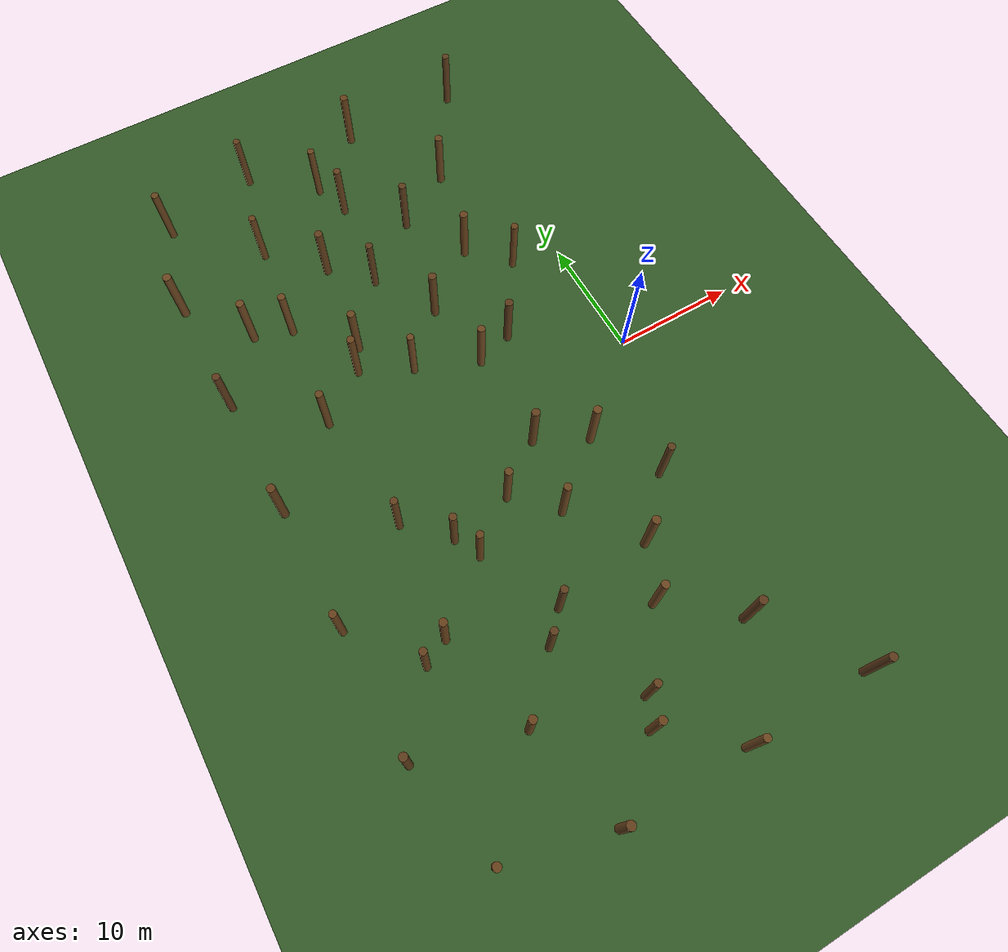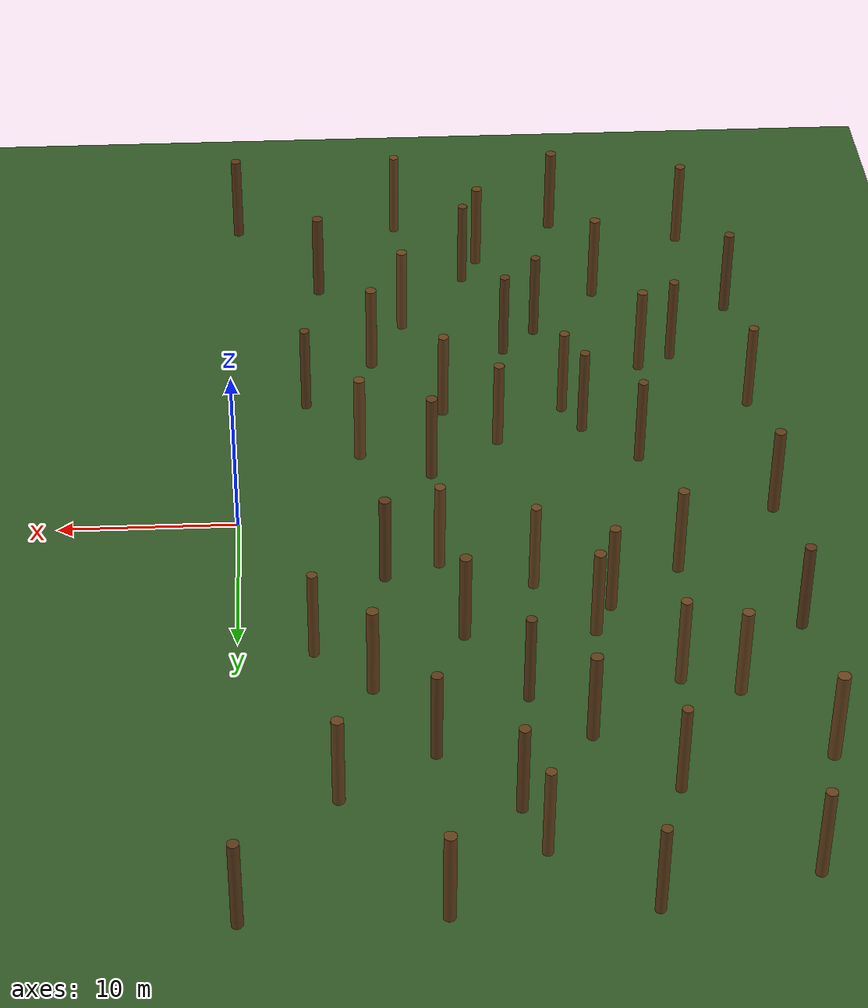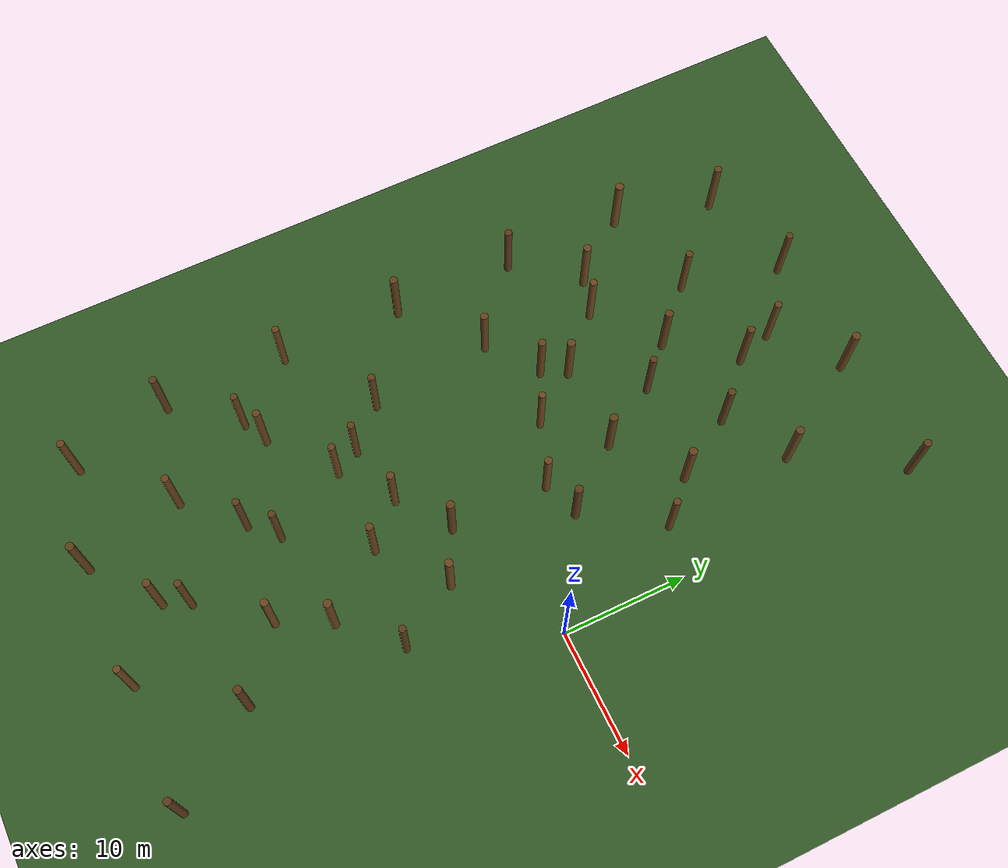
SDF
<sdf version="1.8">
 <world name="forest_world">
  <model name="ground_plane">
   <static>true</static>
   <link name="link">
    <collision name="collision">
     <geometry><plane><normal>0 0 1</normal><size>100 100</size></plane></geometry>
    </collision>
    <visual name="visual">
     <geometry><plane><normal>0 0 1</normal><size>100 100</size></plane></geometry>
     <material><ambient>0.2 0.35 0.15 1</ambient><diffuse>0.2 0.35 0.15 1</diffuse></material>
    </visual>
   </link>
  </model>
  <model name="t000">
   <static>true</static>
   <pose>-28 -28 2.7 0 0 0</pose>
   <link name="l">
    <collision name="c">
     <geometry><cylinder><radius>0.30</radius><length>5.4</length></cylinder></geometry>
    </collision>
    <visual name="v">
     <geometry><cylinder><radius>0.30</radius><length>5.4</length></cylinder></geometry>
     <material><ambient>0.40 0.25 0.10 1</ambient><diffuse>0.40 0.25 0.10 1</diffuse></material>
    </visual>
   </link>
  </model>
  <model name="t001">
   <static>true</static>
   <pose>-20 -30 2.7 0 0 0</pose>
   <link name="l">
    <collision name="c">
     <geometry><cylinder><radius>0.32</radius><length>5.4</length></cylinder></geometry>
    </collision>
    <visual name="v">
     <geometry><cylinder><radius>0.32</radius><length>5.4</length></cylinder></geometry>
     <material><ambient>0.38 0.24 0.10 1</ambient><diffuse>0.38 0.24 0.10 1</diffuse></material>
    </visual>
   </link>
  </model>
  <model name="t002">
   <static>true</static>
   <pose>-10 -30 2.7 0 0 0</pose>
   <link name="l">
    <collision name="c">
     <geometry><cylinder><radius>0.28</radius><length>5.4</length></cylinder></geometry>
    </collision>
    <visual name="v">
     <geometry><cylinder><radius>0.28</radius><length>5.4</length></cylinder></geometry>
     <material><ambient>0.42 0.27 0.12 1</ambient><diffuse>0.42 0.27 0.12 1</diffuse></material>
    </visual>
   </link>
  </model>
  <model name="t003">
   <static>true</static>
   <pose>0 -30 2.7 0 0 0</pose>
   <link name="l">
    <collision name="c">
     <geometry><cylinder><radius>0.30</radius><length>5.4</length></cylinder></geometry>
    </collision>
    <visual name="v">
     <geometry><cylinder><radius>0.30</radius><length>5.4</length></cylinder></geometry>
     <material><ambient>0.36 0.22 0.10 1</ambient><diffuse>0.36 0.22 0.10 1</diffuse></material>
    </visual>
   </link>
  </model>
  <model name="t015">
   <static>true</static>
   <pose>0 30 2.7 0 0 0</pose>
   <link name="l">
    <collision name="c">
     <geometry><cylinder><radius>0.30</radius><length>5.4</length></cylinder></geometry>
    </collision>
    <visual name="v">
     <geometry><cylinder><radius>0.30</radius><length>5.4</length></cylinder></geometry>
     <material><ambient>0.36 0.23 0.10 1</ambient><diffuse>0.36 0.23 0.10 1</diffuse></material>
    </visual>
   </link>
  </model>
  <model name="t016">
   <static>true</static>
   <pose>-10 30 2.7 0 0 0</pose>
   <link name="l">
    <collision name="c">
     <geometry><cylinder><radius>0.32</radius><length>5.4</length></cylinder></geometry>
    </collision>
    <visual name="v">
     <geometry><cylinder><radius>0.32</radius><length>5.4</length></cylinder></geometry>
     <material><ambient>0.40 0.25 0.10 1</ambient><diffuse>0.40 0.25 0.10 1</diffuse></material>
    </visual>
   </link>
  </model>
  <model name="t017">
   <static>true</static>
   <pose>-20 30 2.7 0 0 0</pose>
   <link name="l">
    <collision name="c">
     <geometry><cylinder><radius>0.28</radius><length>5.4</length></cylinder></geometry>
    </collision>
    <visual name="v">
     <geometry><cylinder><radius>0.28</radius><length>5.4</length></cylinder></geometry>
     <material><ambient>0.38 0.24 0.10 1</ambient><diffuse>0.38 0.24 0.10 1</diffuse></material>
    </visual>
   </link>
  </model>
  <model name="t018">
   <static>true</static>
   <pose>-28 28 2.7 0 0 0</pose>
   <link name="l">
    <collision name="c">
     <geometry><cylinder><radius>0.30</radius><length>5.4</length></cylinder></geometry>
    </collision>
    <visual name="v">
     <geometry><cylinder><radius>0.30</radius><length>5.4</length></cylinder></geometry>
     <material><ambient>0.40 0.26 0.11 1</ambient><diffuse>0.40 0.26 0.11 1</diffuse></material>
    </visual>
   </link>
  </model>
  <model name="t019">
   <static>true</static>
   <pose>-30 20 2.7 0 0 0</pose>
   <link name="l">
    <collision name="c">
     <geometry><cylinder><radius>0.34</radius><length>5.4</length></cylinder></geometry>
    </collision>
    <visual name="v">
     <geometry><cylinder><radius>0.34</radius><length>5.4</length></cylinder></geometry>
     <material><ambient>0.42 0.27 0.12 1</ambient><diffuse>0.42 0.27 0.12 1</diffuse></material>
    </visual>
   </link>
  </model>
  <model name="t020">
   <static>true</static>
   <pose>-30 10 2.7 0 0 0</pose>
   <link name="l">
    <collision name="c">
     <geometry><cylinder><radius>0.30</radius><length>5.4</length></cylinder></geometry>
    </collision>
    <visual name="v">
     <geometry><cylinder><radius>0.30</radius><length>5.4</length></cylinder></geometry>
     <material><ambient>0.36 0.22 0.10 1</ambient><diffuse>0.36 0.22 0.10 1</diffuse></material>
    </visual>
   </link>
  </model>
  <model name="t021">
   <static>true</static>
   <pose>-30 0 2.7 0 0 0</pose>
   <link name="l">
    <collision name="c">
     <geometry><cylinder><radius>0.32</radius><length>5.4</length></cylinder></geometry>
    </collision>
    <visual name="v">
     <geometry><cylinder><radius>0.32</radius><length>5.4</length></cylinder></geometry>
     <material><ambient>0.38 0.24 0.10 1</ambient><diffuse>0.38 0.24 0.10 1</diffuse></material>
    </visual>
   </link>
  </model>
  <model name="t022">
   <static>true</static>
   <pose>-30 -10 2.7 0 0 0</pose>
   <link name="l">
    <collision name="c">
     <geometry><cylinder><radius>0.28</radius><length>5.4</length></cylinder></geometry>
    </collision>
    <visual name="v">
     <geometry><cylinder><radius>0.28</radius><length>5.4</length></cylinder></geometry>
     <material><ambient>0.40 0.25 0.10 1</ambient><diffuse>0.40 0.25 0.10 1</diffuse></material>
    </visual>
   </link>
  </model>
  <model name="t023">
   <static>true</static>
   <pose>-30 -20 2.7 0 0 0</pose>
   <link name="l">
    <collision name="c">
     <geometry><cylinder><radius>0.30</radius><length>5.4</length></cylinder></geometry>
    </collision>
    <visual name="v">
     <geometry><cylinder><radius>0.30</radius><length>5.4</length></cylinder></geometry>
     <material><ambient>0.36 0.23 0.10 1</ambient><diffuse>0.36 0.23 0.10 1</diffuse></material>
    </visual>
   </link>
  </model>
  <model name="t024">
   <static>true</static>
   <pose>-22 -22 2.7 0 0 0</pose>
   <link name="l">
    <collision name="c">
     <geometry><cylinder><radius>0.30</radius><length>5.4</length></cylinder></geometry>
    </collision>
    <visual name="v">
     <geometry><cylinder><radius>0.30</radius><length>5.4</length></cylinder></geometry>
     <material><ambient>0.40 0.25 0.10 1</ambient><diffuse>0.40 0.25 0.10 1</diffuse></material>
    </visual>
   </link>
  </model>
  <model name="t025">
   <static>true</static>
   <pose>-14 -24 2.7 0 0 0</pose>
   <link name="l">
    <collision name="c">
     <geometry><cylinder><radius>0.28</radius><length>5.4</length></cylinder></geometry>
    </collision>
    <visual name="v">
     <geometry><cylinder><radius>0.28</radius><length>5.4</length></cylinder></geometry>
     <material><ambient>0.38 0.24 0.10 1</ambient><diffuse>0.38 0.24 0.10 1</diffuse></material>
    </visual>
   </link>
  </model>
  <model name="t026">
   <static>true</static>
   <pose>-5 -23 2.7 0 0 0</pose>
   <link name="l">
    <collision name="c">
     <geometry><cylinder><radius>0.32</radius><length>5.4</length></cylinder></geometry>
    </collision>
    <visual name="v">
     <geometry><cylinder><radius>0.32</radius><length>5.4</length></cylinder></geometry>
     <material><ambient>0.36 0.22 0.10 1</ambient><diffuse>0.36 0.22 0.10 1</diffuse></material>
    </visual>
   </link>
  </model>
  <model name="t030">
   <static>true</static>
   <pose>-24 -14 2.7 0 0 0</pose>
   <link name="l">
    <collision name="c">
     <geometry><cylinder><radius>0.30</radius><length>5.4</length></cylinder></geometry>
    </collision>
    <visual name="v">
     <geometry><cylinder><radius>0.30</radius><length>5.4</length></cylinder></geometry>
     <material><ambient>0.40 0.25 0.10 1</ambient><diffuse>0.40 0.25 0.10 1</diffuse></material>
    </visual>
   </link>
  </model>
  <model name="t031">
   <static>true</static>
   <pose>-16 -16 2.7 0 0 0</pose>
   <link name="l">
    <collision name="c">
     <geometry><cylinder><radius>0.28</radius><length>5.4</length></cylinder></geometry>
    </collision>
    <visual name="v">
     <geometry><cylinder><radius>0.28</radius><length>5.4</length></cylinder></geometry>
     <material><ambient>0.36 0.23 0.10 1</ambient><diffuse>0.36 0.23 0.10 1</diffuse></material>
    </visual>
   </link>
  </model>
  <model name="t032">
   <static>true</static>
   <pose>-8 -15 2.7 0 0 0</pose>
   <link name="l">
    <collision name="c">
     <geometry><cylinder><radius>0.32</radius><length>5.4</length></cylinder></geometry>
    </collision>
    <visual name="v">
     <geometry><cylinder><radius>0.32</radius><length>5.4</length></cylinder></geometry>
     <material><ambient>0.40 0.26 0.11 1</ambient><diffuse>0.40 0.26 0.11 1</diffuse></material>
    </visual>
   </link>
  </model>
  <model name="t037">
   <static>true</static>
   <pose>-23 -5 2.7 0 0 0</pose>
   <link name="l">
    <collision name="c">
     <geometry><cylinder><radius>0.28</radius><length>5.4</length></cylinder></geometry>
    </collision>
    <visual name="v">
     <geometry><cylinder><radius>0.28</radius><length>5.4</length></cylinder></geometry>
     <material><ambient>0.38 0.24 0.10 1</ambient><diffuse>0.38 0.24 0.10 1</diffuse></material>
    </visual>
   </link>
  </model>
  <model name="t038">
   <static>true</static>
   <pose>-15 -7 2.7 0 0 0</pose>
   <link name="l">
    <collision name="c">
     <geometry><cylinder><radius>0.30</radius><length>5.4</length></cylinder></geometry>
    </collision>
    <visual name="v">
     <geometry><cylinder><radius>0.30</radius><length>5.4</length></cylinder></geometry>
     <material><ambient>0.40 0.26 0.11 1</ambient><diffuse>0.40 0.26 0.11 1</diffuse></material>
    </visual>
   </link>
  </model>
  <model name="t039">
   <static>true</static>
   <pose>-7 -6 2.7 0 0 0</pose>
   <link name="l">
    <collision name="c">
     <geometry><cylinder><radius>0.32</radius><length>5.4</length></cylinder></geometry>
    </collision>
    <visual name="v">
     <geometry><cylinder><radius>0.32</radius><length>5.4</length></cylinder></geometry>
     <material><ambient>0.42 0.27 0.12 1</ambient><diffuse>0.42 0.27 0.12 1</diffuse></material>
    </visual>
   </link>
  </model>
  <model name="t043">
   <static>true</static>
   <pose>-24 5 2.7 0 0 0</pose>
   <link name="l">
    <collision name="c">
     <geometry><cylinder><radius>0.30</radius><length>5.4</length></cylinder></geometry>
    </collision>
    <visual name="v">
     <geometry><cylinder><radius>0.30</radius><length>5.4</length></cylinder></geometry>
     <material><ambient>0.40 0.26 0.11 1</ambient><diffuse>0.40 0.26 0.11 1</diffuse></material>
    </visual>
   </link>
  </model>
  <model name="t044">
   <static>true</static>
   <pose>-16 6 2.7 0 0 0</pose>
   <link name="l">
    <collision name="c">
     <geometry><cylinder><radius>0.28</radius><length>5.4</length></cylinder></geometry>
    </collision>
    <visual name="v">
     <geometry><cylinder><radius>0.28</radius><length>5.4</length></cylinder></geometry>
     <material><ambient>0.42 0.27 0.12 1</ambient><diffuse>0.42 0.27 0.12 1</diffuse></material>
    </visual>
   </link>
  </model>
  <model name="t045">
   <static>true</static>
   <pose>-8 5 2.7 0 0 0</pose>
   <link name="l">
    <collision name="c">
     <geometry><cylinder><radius>0.32</radius><length>5.4</length></cylinder></geometry>
    </collision>
    <visual name="v">
     <geometry><cylinder><radius>0.32</radius><length>5.4</length></cylinder></geometry>
     <material><ambient>0.36 0.22 0.10 1</ambient><diffuse>0.36 0.22 0.10 1</diffuse></material>
    </visual>
   </link>
  </model>
  <model name="t049">
   <static>true</static>
   <pose>-23 14 2.7 0 0 0</pose>
   <link name="l">
    <collision name="c">
     <geometry><cylinder><radius>0.30</radius><length>5.4</length></cylinder></geometry>
    </collision>
    <visual name="v">
     <geometry><cylinder><radius>0.30</radius><length>5.4</length></cylinder></geometry>
     <material><ambient>0.42 0.27 0.12 1</ambient><diffuse>0.42 0.27 0.12 1</diffuse></material>
    </visual>
   </link>
  </model>
  <model name="t050">
   <static>true</static>
   <pose>-15 15 2.7 0 0 0</pose>
   <link name="l">
    <collision name="c">
     <geometry><cylinder><radius>0.28</radius><length>5.4</length></cylinder></geometry>
    </collision>
    <visual name="v">
     <geometry><cylinder><radius>0.28</radius><length>5.4</length></cylinder></geometry>
     <material><ambient>0.36 0.23 0.10 1</ambient><diffuse>0.36 0.23 0.10 1</diffuse></material>
    </visual>
   </link>
  </model>
  <model name="t051">
   <static>true</static>
   <pose>-7 14 2.7 0 0 0</pose>
   <link name="l">
    <collision name="c">
     <geometry><cylinder><radius>0.32</radius><length>5.4</length></cylinder></geometry>
    </collision>
    <visual name="v">
     <geometry><cylinder><radius>0.32</radius><length>5.4</length></cylinder></geometry>
     <material><ambient>0.40 0.25 0.10 1</ambient><diffuse>0.40 0.25 0.10 1</diffuse></material>
    </visual>
   </link>
  </model>
  <model name="t056">
   <static>true</static>
   <pose>-22 22 2.7 0 0 0</pose>
   <link name="l">
    <collision name="c">
     <geometry><cylinder><radius>0.28</radius><length>5.4</length></cylinder></geometry>
    </collision>
    <visual name="v">
     <geometry><cylinder><radius>0.28</radius><length>5.4</length></cylinder></geometry>
     <material><ambient>0.40 0.25 0.10 1</ambient><diffuse>0.40 0.25 0.10 1</diffuse></material>
    </visual>
   </link>
  </model>
  <model name="t057">
   <static>true</static>
   <pose>-14 23 2.7 0 0 0</pose>
   <link name="l">
    <collision name="c">
     <geometry><cylinder><radius>0.30</radius><length>5.4</length></cylinder></geometry>
    </collision>
    <visual name="v">
     <geometry><cylinder><radius>0.30</radius><length>5.4</length></cylinder></geometry>
     <material><ambient>0.38 0.24 0.10 1</ambient><diffuse>0.38 0.24 0.10 1</diffuse></material>
    </visual>
   </link>
  </model>
  <model name="t058">
   <static>true</static>
   <pose>-5 22 2.7 0 0 0</pose>
   <link name="l">
    <collision name="c">
     <geometry><cylinder><radius>0.32</radius><length>5.4</length></cylinder></geometry>
    </collision>
    <visual name="v">
     <geometry><cylinder><radius>0.32</radius><length>5.4</length></cylinder></geometry>
     <material><ambient>0.40 0.26 0.11 1</ambient><diffuse>0.40 0.26 0.11 1</diffuse></material>
    </visual>
   </link>
  </model>
  <model name="t062">
   <static>true</static>
   <pose>-20 -8 2.7 0 0 0</pose>
   <link name="l">
    <collision name="c">
     <geometry><cylinder><radius>0.28</radius><length>5.4</length></cylinder></geometry>
    </collision>
    <visual name="v">
     <geometry><cylinder><radius>0.28</radius><length>5.4</length></cylinder></geometry>
     <material><ambient>0.38 0.24 0.10 1</ambient><diffuse>0.38 0.24 0.10 1</diffuse></material>
    </visual>
   </link>
  </model>
  <model name="t063">
   <static>true</static>
   <pose>-12 -10 2.7 0 0 0</pose>
   <link name="l">
    <collision name="c">
     <geometry><cylinder><radius>0.30</radius><length>5.4</length></cylinder></geometry>
    </collision>
    <visual name="v">
     <geometry><cylinder><radius>0.30</radius><length>5.4</length></cylinder></geometry>
     <material><ambient>0.40 0.26 0.11 1</ambient><diffuse>0.40 0.26 0.11 1</diffuse></material>
    </visual>
   </link>
  </model>
  <model name="t066">
   <static>true</static>
   <pose>-20 8 2.7 0 0 0</pose>
   <link name="l">
    <collision name="c">
     <geometry><cylinder><radius>0.30</radius><length>5.4</length></cylinder></geometry>
    </collision>
    <visual name="v">
     <geometry><cylinder><radius>0.30</radius><length>5.4</length></cylinder></geometry>
     <material><ambient>0.40 0.25 0.10 1</ambient><diffuse>0.40 0.25 0.10 1</diffuse></material>
    </visual>
   </link>
  </model>
  <model name="t067">
   <static>true</static>
   <pose>-12 10 2.7 0 0 0</pose>
   <link name="l">
    <collision name="c">
     <geometry><cylinder><radius>0.32</radius><length>5.4</length></cylinder></geometry>
    </collision>
    <visual name="v">
     <geometry><cylinder><radius>0.32</radius><length>5.4</length></cylinder></geometry>
     <material><ambient>0.38 0.24 0.10 1</ambient><diffuse>0.38 0.24 0.10 1</diffuse></material>
    </visual>
   </link>
  </model>
  <model name="t070">
   <static>true</static>
   <pose>-18 -18 2.7 0 0 0</pose>
   <link name="l">
    <collision name="c">
     <geometry><cylinder><radius>0.28</radius><length>5.4</length></cylinder></geometry>
    </collision>
    <visual name="v">
     <geometry><cylinder><radius>0.28</radius><length>5.4</length></cylinder></geometry>
     <material><ambient>0.36 0.23 0.10 1</ambient><diffuse>0.36 0.23 0.10 1</diffuse></material>
    </visual>
   </link>
  </model>
  <model name="t072">
   <static>true</static>
   <pose>-18 18 2.7 0 0 0</pose>
   <link name="l">
    <collision name="c">
     <geometry><cylinder><radius>0.32</radius><length>5.4</length></cylinder></geometry>
    </collision>
    <visual name="v">
     <geometry><cylinder><radius>0.32</radius><length>5.4</length></cylinder></geometry>
     <material><ambient>0.38 0.24 0.10 1</ambient><diffuse>0.38 0.24 0.10 1</diffuse></material>
    </visual>
   </link>
  </model>
  <model name="t074">
   <static>true</static>
   <pose>-10 -19 2.7 0 0 0</pose>
   <link name="l">
    <collision name="c">
     <geometry><cylinder><radius>0.30</radius><length>5.4</length></cylinder></geometry>
    </collision>
    <visual name="v">
     <geometry><cylinder><radius>0.30</radius><length>5.4</length></cylinder></geometry>
     <material><ambient>0.42 0.27 0.12 1</ambient><diffuse>0.42 0.27 0.12 1</diffuse></material>
    </visual>
   </link>
  </model>
  <model name="t076">
   <static>true</static>
   <pose>-19 -10 2.7 0 0 0</pose>
   <link name="l">
    <collision name="c">
     <geometry><cylinder><radius>0.28</radius><length>5.4</length></cylinder></geometry>
    </collision>
    <visual name="v">
     <geometry><cylinder><radius>0.28</radius><length>5.4</length></cylinder></geometry>
     <material><ambient>0.40 0.25 0.10 1</ambient><diffuse>0.40 0.25 0.10 1</diffuse></material>
    </visual>
   </link>
  </model>
  <model name="t078">
   <static>true</static>
   <pose>-19 10 2.7 0 0 0</pose>
   <link name="l">
    <collision name="c">
     <geometry><cylinder><radius>0.32</radius><length>5.4</length></cylinder></geometry>
    </collision>
    <visual name="v">
     <geometry><cylinder><radius>0.32</radius><length>5.4</length></cylinder></geometry>
     <material><ambient>0.40 0.26 0.11 1</ambient><diffuse>0.40 0.26 0.11 1</diffuse></material>
    </visual>
   </link>
  </model>
  <model name="t080">
   <static>true</static>
   <pose>-10 19 2.7 0 0 0</pose>
   <link name="l">
    <collision name="c">
     <geometry><cylinder><radius>0.30</radius><length>5.4</length></cylinder></geometry>
    </collision>
    <visual name="v">
     <geometry><cylinder><radius>0.30</radius><length>5.4</length></cylinder></geometry>
     <material><ambient>0.36 0.23 0.10 1</ambient><diffuse>0.36 0.23 0.10 1</diffuse></material>
    </visual>
   </link>
  </model>
  <model name="t082">
   <static>true</static>
   <pose>-26 -15 2.7 0 0 0</pose>
   <link name="l">
    <collision name="c">
     <geometry><cylinder><radius>0.28</radius><length>5.4</length></cylinder></geometry>
    </collision>
    <visual name="v">
     <geometry><cylinder><radius>0.28</radius><length>5.4</length></cylinder></geometry>
     <material><ambient>0.38 0.24 0.10 1</ambient><diffuse>0.38 0.24 0.10 1</diffuse></material>
    </visual>
   </link>
  </model>
  <model name="t084">
   <static>true</static>
   <pose>-26 15 2.7 0 0 0</pose>
   <link name="l">
    <collision name="c">
     <geometry><cylinder><radius>0.32</radius><length>5.4</length></cylinder></geometry>
    </collision>
    <visual name="v">
     <geometry><cylinder><radius>0.32</radius><length>5.4</length></cylinder></geometry>
     <material><ambient>0.42 0.27 0.12 1</ambient><diffuse>0.42 0.27 0.12 1</diffuse></material>
    </visual>
   </link>
  </model>
  <model name="t086">
   <static>true</static>
   <pose>-15 -26 2.7 0 0 0</pose>
   <link name="l">
    <collision name="c">
     <geometry><cylinder><radius>0.30</radius><length>5.4</length></cylinder></geometry>
    </collision>
    <visual name="v">
     <geometry><cylinder><radius>0.30</radius><length>5.4</length></cylinder></geometry>
     <material><ambient>0.40 0.25 0.10 1</ambient><diffuse>0.40 0.25 0.10 1</diffuse></material>
    </visual>
   </link>
  </model>
  <model name="t088">
   <static>true</static>
   <pose>-15 26 2.7 0 0 0</pose>
   <link name="l">
    <collision name="c">
     <geometry><cylinder><radius>0.28</radius><length>5.4</length></cylinder></geometry>
    </collision>
    <visual name="v">
     <geometry><cylinder><radius>0.28</radius><length>5.4</length></cylinder></geometry>
     <material><ambient>0.40 0.26 0.11 1</ambient><diffuse>0.40 0.26 0.11 1</diffuse></material>
    </visual>
   </link>
  </model>
  <model name="t090">
   <static>true</static>
   <pose>-4 -11 2.7 0 0 0</pose>
   <link name="l">
    <collision name="c">
     <geometry><cylinder><radius>0.28</radius><length>5.4</length></cylinder></geometry>
    </collision>
    <visual name="v">
     <geometry><cylinder><radius>0.28</radius><length>5.4</length></cylinder></geometry>
     <material><ambient>0.36 0.23 0.10 1</ambient><diffuse>0.36 0.23 0.10 1</diffuse></material>
    </visual>
   </link>
  </model>
  <model name="t092">
   <static>true</static>
   <pose>-11 -4 2.7 0 0 0</pose>
   <link name="l">
    <collision name="c">
     <geometry><cylinder><radius>0.32</radius><length>5.4</length></cylinder></geometry>
    </collision>
    <visual name="v">
     <geometry><cylinder><radius>0.32</radius><length>5.4</length></cylinder></geometry>
     <material><ambient>0.38 0.24 0.10 1</ambient><diffuse>0.38 0.24 0.10 1</diffuse></material>
    </visual>
   </link>
  </model>
  <model name="t094">
   <static>true</static>
   <pose>-11 4 2.7 0 0 0</pose>
   <link name="l">
    <collision name="c">
     <geometry><cylinder><radius>0.30</radius><length>5.4</length></cylinder></geometry>
    </collision>
    <visual name="v">
     <geometry><cylinder><radius>0.30</radius><length>5.4</length></cylinder></geometry>
     <material><ambient>0.42 0.27 0.12 1</ambient><diffuse>0.42 0.27 0.12 1</diffuse></material>
    </visual>
   </link>
  </model>
  <model name="t096">
   <static>true</static>
   <pose>-4 11 2.7 0 0 0</pose>
   <link name="l">
    <collision name="c">
     <geometry><cylinder><radius>0.28</radius><length>5.4</length></cylinder></geometry>
    </collision>
    <visual name="v">
     <geometry><cylinder><radius>0.28</radius><length>5.4</length></cylinder></geometry>
     <material><ambient>0.40 0.25 0.10 1</ambient><diffuse>0.40 0.25 0.10 1</diffuse></material>
    </visual>
   </link>
  </model>
 </world>
</sdf>
